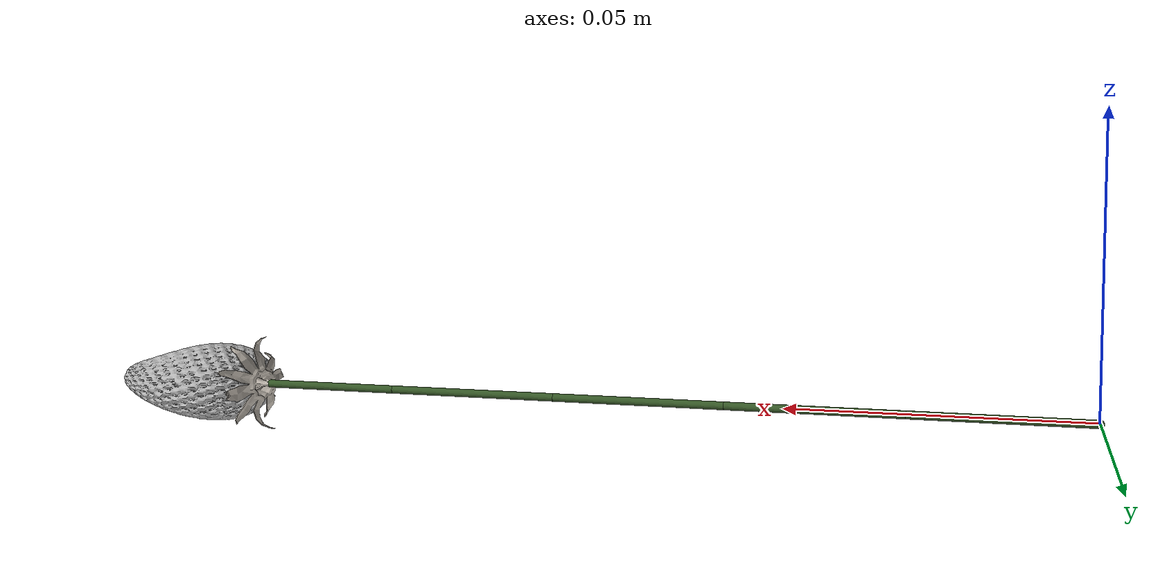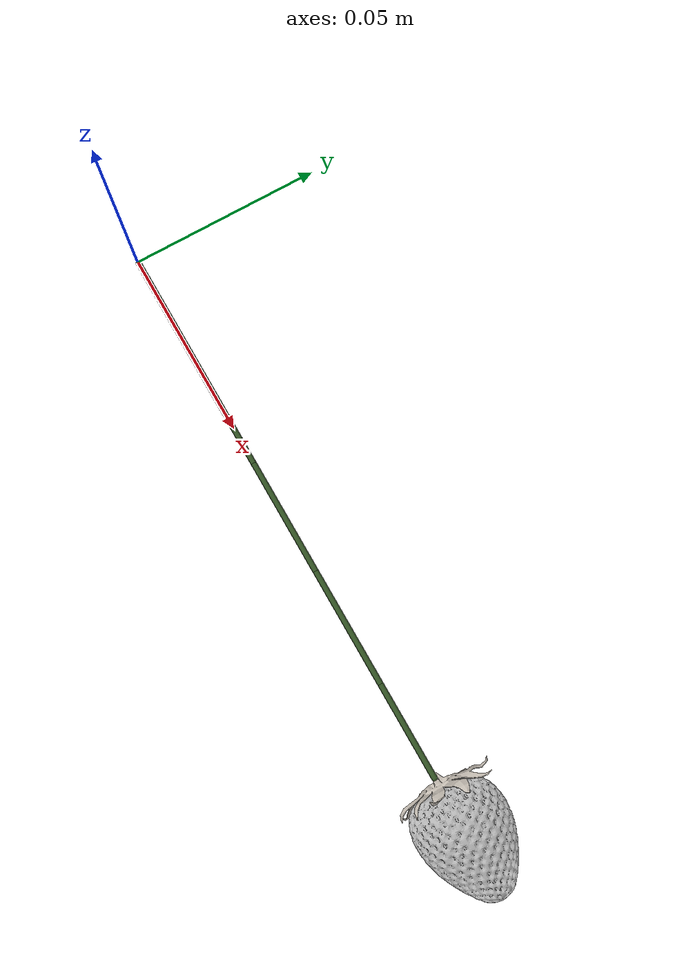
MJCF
<mujoco model="strawb_vine">
  <compiler angle="radian" meshdir="assets/"/>

  <default>
    <default class="vine">
      <joint type="ball" stiffness="0.02" armature="0.0001" damping="0.01" actuatorfrclimited="false"/>
      <geom  type="capsule" size="0.0007" mass="0.0001" solref="0.001 1" solimp="0.97 0.995 0.0005 0.5 2" rgba="0.208 0.337 0.149 1"/>
    </default>
  </default>

  <asset>
    <texture name="strawb_leaves"   type="2d" file="textures/strawberry_leaves_512.png"/>
    <texture name="strawb_texture"  type="2d" file="textures/strawberry_fixed_512_mix.png"/>
    <material name="strawberry_material" texture="strawb_texture"  shininess="0.01" specular="0.01" reflectance="0.05" texuniform="true"/>
    <material name="strawberry_leaves"   texture="strawb_leaves"   shininess="0.1"  specular="0.1"  reflectance="0.5"  texuniform="true"/>

    <mesh name="strawberry"            file="strawberry_origin.obj"           scale="0.8 0.8 0.5"/>
    <mesh name="strawberry_leaves"     file="strawberry_leaves_origin.obj"    scale="0.8 0.8 0.5"/>
    <mesh name="strawberry_collision"  file="strawberry_collision_origin.obj" scale="0.8 0.8 0.5"/>
  </asset>

  <worldbody>
    <!-- root at origin; rotate/place when attaching in the parent scene -->
    <body name="vine_root">
      <joint class="vine" name="aJ0"/>
      <!-- segment 0 fixed root segment -->
      <body name="seg_first">
        <geom class="vine" name="aG0" fromto="0 0 0  0.03 0 0"/>
        <site name="seg_first" pos="0 0 0" group="3"/>
        <!-- segment 1 -->
        <body name="seg_1" pos="0.03 0 0">
          <joint class="vine" name="aJ_1"/>
          <geom class="vine"  name="aG1" fromto="0 0 0  0.03 0 0"/>
          <!-- segment 2 -->
          <body name="seg_2" pos="0.03 0 0">
            <joint class="vine" name="aJ_2"/>
            <geom class="vine"  name="aG2" fromto="0 0 0  0.03 0 0"/>
            <!-- segment 3 last -->
            <body name="seg_last" pos="0.03 0 0">
              <joint class="vine" name="aJ_last"/>
              <geom class="vine"  name="aG3" fromto="0 0 0  0.03 0 0"/>
              <site  name="seg_last" pos="0.03 0 0" group="3"/>
              <!-- stem and fruit cluster -->
              <body name="stem1" pos="0.03 0 0">
                <geom class="vine" name="stem1" fromto="0 0 0  0.024 0 0"/>
                <site name="stem1" pos="0 0.024 0" size="0.0012" rgba="0 0 1 1" group="3"/>
                <body name="block1" pos="0.024 0 0" euler="0 0 1.57">
                  <geom name="block1"         type="mesh" mesh="strawberry_collision" density="400" group="3"/>
                  <geom name="block1_visual"  type="mesh" mesh="strawberry"          material="strawberry_material" contype="0" conaffinity="0" rgba="0.7 0.7 0.7 1"/>
                  <geom name="leaves1"        type="mesh" mesh="strawberry_leaves"   material="strawberry_leaves"   contype="0" conaffinity="0"/>
                </body>
              </body>
              <!-- end stem and fruit cluster -->

            </body>
          </body>
        </body>
      </body>

    </body>
  </worldbody>
</mujoco>
